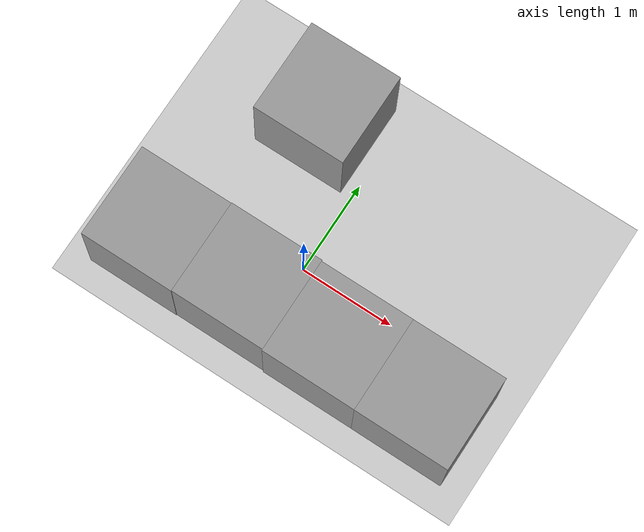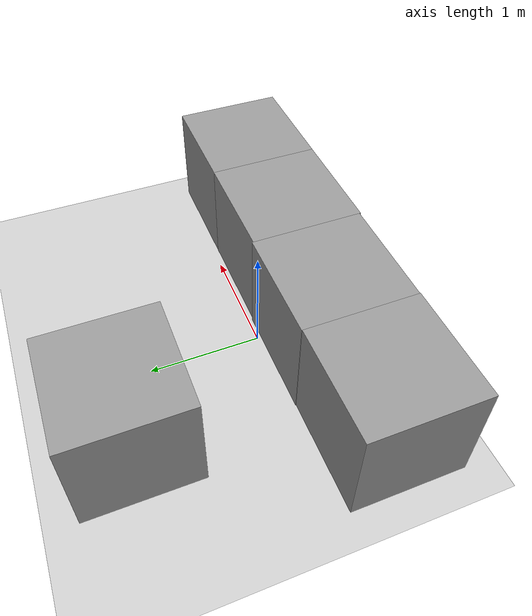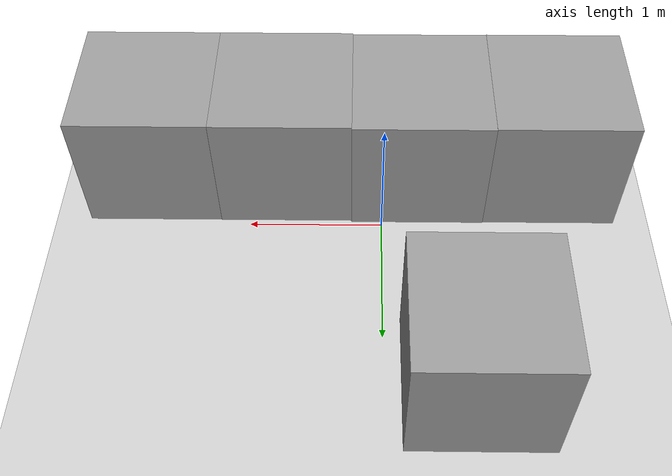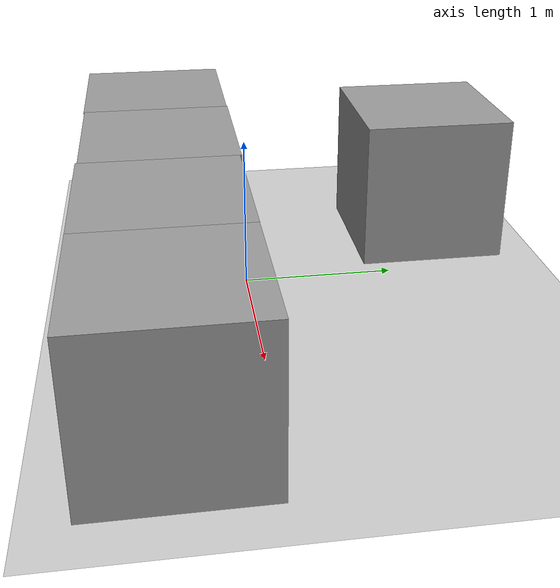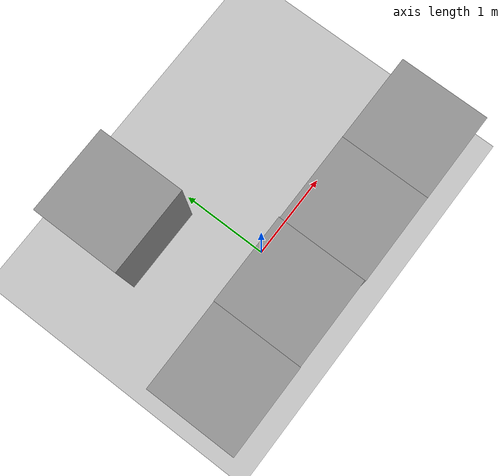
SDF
<sdf version="1.7">
 <world name="default">
  <plugin name="gazebo_ros_state" filename="libgazebo_ros_state.so">
   <ros><namespace>/gazebo</namespace></ros>
   <update_rate>50.0</update_rate>
  </plugin>
  <light name="sun" type="directional">
   <pose>0 0 10 0 -0 0</pose>
   <diffuse>0.8 0.8 0.8 1</diffuse>
   <specular>0.2 0.2 0.2 1</specular>
   <attenuation>
    <range>1000</range>
    <constant>0.9</constant>
    <linear>0.01</linear>
    <quadratic>0.001</quadratic>
   </attenuation>
   <direction>-0.5 0.1 -0.9</direction>
   <spot><inner_angle>0</inner_angle><outer_angle>0</outer_angle><falloff>0</falloff></spot>
  </light>
  <model name="ground_plane">
   <static>1</static>
   <link name="link">
    <collision name="collision">
     <geometry><plane><normal>0 0 1</normal><size>100 100</size></plane></geometry>
     <surface><friction><ode><mu>100</mu><mu2>50</mu2></ode></friction></surface>
    </collision>
    <visual name="visual">
     <cast_shadows>0</cast_shadows>
     <geometry><plane><normal>0 0 1</normal><size>100 100</size></plane></geometry>
     <material>
      <script><uri>file://media/materials/scripts/gazebo.material</uri><name>Gazebo/Grey</name></script>
     </material>
    </visual>
   </link>
  </model>
  <physics type="ode">
   <real_time_update_rate>1000</real_time_update_rate>
   <max_step_size>0.001</max_step_size>
   <real_time_factor>1</real_time_factor>
   <ode>
    <solver>
     <type>quick</type>
     <iters>150</iters>
     <precon_iters>0</precon_iters>
     <sor>1.4</sor>
     <use_dynamic_moi_rescaling>1</use_dynamic_moi_rescaling>
    </solver>
    <constraints>
     <cfm>1e-05</cfm>
     <erp>0.2</erp>
     <contact_max_correcting_vel>2000</contact_max_correcting_vel>
     <contact_surface_layer>0.01</contact_surface_layer>
    </constraints>
   </ode>
  </physics>
  <scene><ambient>0.4 0.4 0.4 1</ambient><background>0.7 0.7 0.7 1</background><shadows>1</shadows></scene>
  <gravity>0 0 -9.8</gravity>
  <magnetic_field>6e-06 2.3e-05 -4.2e-05</magnetic_field>
  <atmosphere type="adiabatic"/>
  <audio><device>default</device></audio>
  <spherical_coordinates>
   <surface_model>EARTH_WGS84</surface_model>
   <latitude_deg>0</latitude_deg>
   <longitude_deg>0</longitude_deg>
   <elevation>0</elevation>
   <heading_deg>0</heading_deg>
  </spherical_coordinates>
  <model name="unit_box">
   <pose>1.72526 -0.546241 0.5 0 -0 0.001355</pose>
   <link name="link">
    <inertial>
     <mass>1</mass>
     <inertia>
      <ixx>0.166667</ixx>
      <ixy>0</ixy>
      <ixz>0</ixz>
      <iyy>0.166667</iyy>
      <iyz>0</iyz>
      <izz>0.166667</izz>
     </inertia>
    </inertial>
    <collision name="collision"><geometry><box><size>1 1 1</size></box></geometry></collision>
    <visual name="visual">
     <geometry><box><size>1 1 1</size></box></geometry>
     <material>
      <script><name>Gazebo/Grey</name><uri>file://media/materials/scripts/gazebo.material</uri></script>
     </material>
    </visual>
   </link>
  </model>
  <model name="unit_box_0">
   <pose>0.725253 -0.546834 0.5 0 -0 0.001348</pose>
   <link name="link">
    <inertial>
     <mass>1</mass>
     <inertia>
      <ixx>0.166667</ixx>
      <ixy>0</ixy>
      <ixz>0</ixz>
      <iyy>0.166667</iyy>
      <iyz>0</iyz>
      <izz>0.166667</izz>
     </inertia>
    </inertial>
    <collision name="collision"><geometry><box><size>1 1 1</size></box></geometry></collision>
    <visual name="visual">
     <geometry><box><size>1 1 1</size></box></geometry>
     <material>
      <script><name>Gazebo/Grey</name><uri>file://media/materials/scripts/gazebo.material</uri></script>
     </material>
    </visual>
   </link>
  </model>
  <model name="unit_box_1">
   <pose>-0.625008 1.34993 0.5 0 -0 -8e-06</pose>
   <link name="link">
    <inertial>
     <mass>1</mass>
     <inertia>
      <ixx>0.166667</ixx>
      <ixy>0</ixy>
      <ixz>0</ixz>
      <iyy>0.166667</iyy>
      <iyz>0</iyz>
      <izz>0.166667</izz>
     </inertia>
    </inertial>
    <collision name="collision"><geometry><box><size>1 1 1</size></box></geometry></collision>
    <visual name="visual">
     <geometry><box><size>1 1 1</size></box></geometry>
     <material>
      <script><name>Gazebo/Grey</name><uri>file://media/materials/scripts/gazebo.material</uri></script>
     </material>
    </visual>
   </link>
  </model>
  <model name="unit_box_2">
   <pose>-0.274762 -0.536728 0.5 0 -0 0.001346</pose>
   <link name="link">
    <inertial>
     <mass>1</mass>
     <inertia>
      <ixx>0.166667</ixx>
      <ixy>0</ixy>
      <ixz>0</ixz>
      <iyy>0.166667</iyy>
      <iyz>0</iyz>
      <izz>0.166667</izz>
     </inertia>
    </inertial>
    <collision name="collision"><geometry><box><size>1 1 1</size></box></geometry></collision>
    <visual name="visual">
     <geometry><box><size>1 1 1</size></box></geometry>
     <material>
      <script><name>Gazebo/Grey</name><uri>file://media/materials/scripts/gazebo.material</uri></script>
     </material>
    </visual>
   </link>
  </model>
  <model name="unit_box_3">
   <pose>-1.27476 -0.542964 0.5 0 -0 0.001352</pose>
   <link name="link">
    <inertial>
     <mass>1</mass>
     <inertia>
      <ixx>0.166667</ixx>
      <ixy>0</ixy>
      <ixz>0</ixz>
      <iyy>0.166667</iyy>
      <iyz>0</iyz>
      <izz>0.166667</izz>
     </inertia>
    </inertial>
    <collision name="collision"><geometry><box><size>1 1 1</size></box></geometry></collision>
    <visual name="visual">
     <geometry><box><size>1 1 1</size></box></geometry>
     <material>
      <script><name>Gazebo/Grey</name><uri>file://media/materials/scripts/gazebo.material</uri></script>
     </material>
    </visual>
   </link>
  </model>
 </world>
</sdf>
